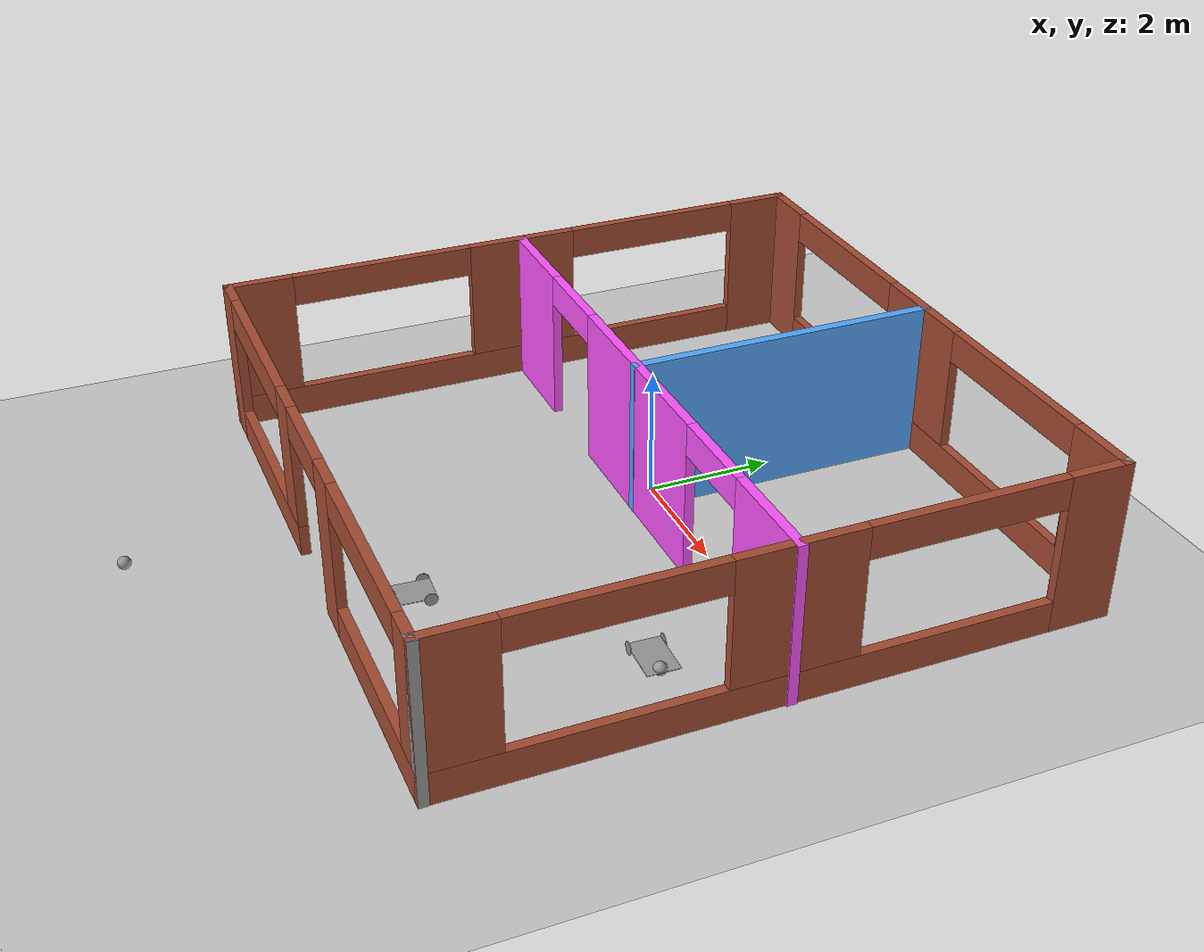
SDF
<sdf version="1.6">
 <world name="default">
  <plugin name="hello" filename="libhello.so"/>
  <light name="sun" type="directional">
   <pose>0 0 10 0 -0 0</pose>
   <diffuse>0.8 0.8 0.8 1</diffuse>
   <specular>0.2 0.2 0.2 1</specular>
   <attenuation>
    <range>1000</range>
    <constant>0.9</constant>
    <linear>0.01</linear>
    <quadratic>0.001</quadratic>
   </attenuation>
   <direction>-0.5 0.1 -0.9</direction>
  </light>
  <model name="ground_plane">
   <static>1</static>
   <link name="link">
    <collision name="collision">
     <geometry><plane><normal>0 0 1</normal><size>100 100</size></plane></geometry>
     <surface><friction><ode><mu>100</mu><mu2>50</mu2></ode></friction></surface>
    </collision>
    <visual name="visual">
     <cast_shadows>0</cast_shadows>
     <geometry><plane><normal>0 0 1</normal><size>100 100</size></plane></geometry>
     <material>
      <script><uri>file://media/materials/scripts/gazebo.material</uri><name>Gazebo/Grey</name></script>
     </material>
    </visual>
   </link>
  </model>
  <gravity>0 0 -9.8</gravity>
  <magnetic_field>6e-06 2.3e-05 -4.2e-05</magnetic_field>
  <atmosphere type="adiabatic"/>
  <physics name="default_physics" default="0" type="ode">
   <max_step_size>0.001</max_step_size>
   <real_time_factor>1</real_time_factor>
   <real_time_update_rate>1000</real_time_update_rate>
  </physics>
  <scene><ambient>0.4 0.4 0.4 1</ambient><background>0.7 0.7 0.7 1</background><shadows>1</shadows></scene>
  <spherical_coordinates>
   <surface_model>EARTH_WGS84</surface_model>
   <latitude_deg>0</latitude_deg>
   <longitude_deg>0</longitude_deg>
   <elevation>0</elevation>
   <heading_deg>0</heading_deg>
  </spherical_coordinates>
  <model name="office">
   <pose>0.46857 -0.482604 0 0 -0 0</pose>
   <link name="Wall_0">
    <pose>-4.938 0 0 0 0 -1.5708</pose>
    <visual name="Wall_0_Visual_0">
     <pose>-4.4756 0 1.25 0 -0 0</pose>
     <geometry><box><size>1.04879 0.15 2.5</size></box></geometry>
     <material>
      <script><uri>file://media/materials/scripts/gazebo.material</uri><name>Gazebo/Bricks</name></script>
      <ambient>1 1 1 1</ambient>
     </material>
     <meta><layer>0</layer></meta>
    </visual>
    <collision name="Wall_0_Collision_0">
     <geometry><box><size>1.04879 0.15 2.5</size></box></geometry>
     <pose>-4.4756 0 1.25 0 -0 0</pose>
    </collision>
    <visual name="Wall_0_Visual_1">
     <pose>0.524397 0 0.25 0 -0 0</pose>
     <geometry><box><size>8.95121 0.15 0.5</size></box></geometry>
     <material>
      <script><uri>file://media/materials/scripts/gazebo.material</uri><name>Gazebo/Bricks</name></script>
      <ambient>1 1 1 1</ambient>
     </material>
     <meta><layer>0</layer></meta>
    </visual>
    <collision name="Wall_0_Collision_1">
     <geometry><box><size>8.95121 0.15 0.5</size></box></geometry>
     <pose>0.524397 0 0.25 0 -0 0</pose>
    </collision>
    <visual name="Wall_0_Visual_2">
     <pose>-0.029291 0 1.5 0 -0 0</pose>
     <geometry><box><size>1.84383 0.15 2</size></box></geometry>
     <material>
      <script><uri>file://media/materials/scripts/gazebo.material</uri><name>Gazebo/Bricks</name></script>
      <ambient>1 1 1 1</ambient>
     </material>
     <meta><layer>0</layer></meta>
    </visual>
    <collision name="Wall_0_Collision_2">
     <geometry><box><size>1.84383 0.15 2</size></box></geometry>
     <pose>-0.029291 0 1.5 0 -0 0</pose>
    </collision>
    <visual name="Wall_0_Visual_3">
     <pose>4.44631 0 1.5 0 -0 0</pose>
     <geometry><box><size>1.10737 0.15 2</size></box></geometry>
     <material>
      <script><uri>file://media/materials/scripts/gazebo.material</uri><name>Gazebo/Bricks</name></script>
      <ambient>1 1 1 1</ambient>
     </material>
     <meta><layer>0</layer></meta>
    </visual>
    <collision name="Wall_0_Collision_3">
     <geometry><box><size>1.10737 0.15 2</size></box></geometry>
     <pose>4.44631 0 1.5 0 -0 0</pose>
    </collision>
    <visual name="Wall_0_Visual_4">
     <pose>-2.45121 0 2.25 0 -0 0</pose>
     <geometry><box><size>3 0.15 0.5</size></box></geometry>
     <material>
      <script><uri>file://media/materials/scripts/gazebo.material</uri><name>Gazebo/Bricks</name></script>
      <ambient>1 1 1 1</ambient>
     </material>
     <meta><layer>0</layer></meta>
    </visual>
    <collision name="Wall_0_Collision_4">
     <geometry><box><size>3 0.15 0.5</size></box></geometry>
     <pose>-2.45121 0 2.25 0 -0 0</pose>
    </collision>
    <visual name="Wall_0_Visual_5">
     <pose>2.39262 0 2.25 0 -0 0</pose>
     <geometry><box><size>3 0.15 0.5</size></box></geometry>
     <material>
      <script><uri>file://media/materials/scripts/gazebo.material</uri><name>Gazebo/Bricks</name></script>
      <ambient>1 1 1 1</ambient>
     </material>
     <meta><layer>0</layer></meta>
    </visual>
    <collision name="Wall_0_Collision_5">
     <geometry><box><size>3 0.15 0.5</size></box></geometry>
     <pose>2.39262 0 2.25 0 -0 0</pose>
    </collision>
   </link>
   <link name="Wall_1">
    <pose>-0.013 -4.925 0 0 -0 0</pose>
    <visual name="Wall_1_Visual_0">
     <pose>-4.69268 0 1.25 0 -0 0</pose>
     <geometry><box><size>0.614643 0.15 2.5</size></box></geometry>
     <material>
      <script><uri>file://media/materials/scripts/gazebo.material</uri><name>Gazebo/Bricks</name></script>
      <ambient>1 1 1 1</ambient>
     </material>
     <meta><layer>0</layer></meta>
    </visual>
    <collision name="Wall_1_Collision_0">
     <geometry><box><size>0.614643 0.15 2.5</size></box></geometry>
     <pose>-4.69268 0 1.25 0 -0 0</pose>
    </collision>
    <visual name="Wall_1_Visual_1">
     <pose>1.08612 0 1.25 0 -0 0</pose>
     <geometry><box><size>0.654955 0.15 2.5</size></box></geometry>
     <material>
      <script><uri>file://media/materials/scripts/gazebo.material</uri><name>Gazebo/Bricks</name></script>
      <ambient>1 1 1 1</ambient>
     </material>
     <meta><layer>0</layer></meta>
    </visual>
    <collision name="Wall_1_Collision_1">
     <geometry><box><size>0.654955 0.15 2.5</size></box></geometry>
     <pose>1.08612 0 1.25 0 -0 0</pose>
    </collision>
    <visual name="Wall_1_Visual_2">
     <pose>-2.56336 0 0.25 0 -0 0</pose>
     <geometry><box><size>3.644 0.15 0.5</size></box></geometry>
     <material>
      <script><uri>file://media/materials/scripts/gazebo.material</uri><name>Gazebo/Bricks</name></script>
      <ambient>1 1 1 1</ambient>
     </material>
     <meta><layer>0</layer></meta>
    </visual>
    <collision name="Wall_1_Collision_2">
     <geometry><box><size>3.644 0.15 0.5</size></box></geometry>
     <pose>-2.56336 0 0.25 0 -0 0</pose>
    </collision>
    <visual name="Wall_1_Visual_3">
     <pose>3.2068 0 0.25 0 -0 0</pose>
     <geometry><box><size>3.5864 0.15 0.5</size></box></geometry>
     <material>
      <script><uri>file://media/materials/scripts/gazebo.material</uri><name>Gazebo/Bricks</name></script>
      <ambient>1 1 1 1</ambient>
     </material>
     <meta><layer>0</layer></meta>
    </visual>
    <collision name="Wall_1_Collision_3">
     <geometry><box><size>3.5864 0.15 0.5</size></box></geometry>
     <pose>3.2068 0 0.25 0 -0 0</pose>
    </collision>
    <visual name="Wall_1_Visual_4">
     <pose>-1.06336 0 1.5 0 -0 0</pose>
     <geometry><box><size>0.643998 0.15 2</size></box></geometry>
     <material>
      <script><uri>file://media/materials/scripts/gazebo.material</uri><name>Gazebo/Bricks</name></script>
      <ambient>1 1 1 1</ambient>
     </material>
     <meta><layer>0</layer></meta>
    </visual>
    <collision name="Wall_1_Collision_4">
     <geometry><box><size>0.643998 0.15 2</size></box></geometry>
     <pose>-1.06336 0 1.5 0 -0 0</pose>
    </collision>
    <visual name="Wall_1_Visual_5">
     <pose>-1.06336 0 1.5 0 -0 0</pose>
     <geometry><box><size>0.643998 0.15 2</size></box></geometry>
     <material>
      <script><uri>file://media/materials/scripts/gazebo.material</uri><name>Gazebo/Bricks</name></script>
      <ambient>1 1 1 1</ambient>
     </material>
     <meta><layer>0</layer></meta>
    </visual>
    <collision name="Wall_1_Collision_5">
     <geometry><box><size>0.643998 0.15 2</size></box></geometry>
     <pose>-1.06336 0 1.5 0 -0 0</pose>
    </collision>
    <visual name="Wall_1_Visual_6">
     <pose>4.7068 0 1.5 0 -0 0</pose>
     <geometry><box><size>0.586404 0.15 2</size></box></geometry>
     <material>
      <script><uri>file://media/materials/scripts/gazebo.material</uri><name>Gazebo/Bricks</name></script>
      <ambient>1 1 1 1</ambient>
     </material>
     <meta><layer>0</layer></meta>
    </visual>
    <collision name="Wall_1_Collision_6">
     <geometry><box><size>0.586404 0.15 2</size></box></geometry>
     <pose>4.7068 0 1.5 0 -0 0</pose>
    </collision>
    <visual name="Wall_1_Visual_7">
     <pose>-2.88536 0 2.25 0 -0 0</pose>
     <geometry><box><size>3 0.15 0.5</size></box></geometry>
     <material>
      <script><uri>file://media/materials/scripts/gazebo.material</uri><name>Gazebo/Bricks</name></script>
      <ambient>1 1 1 1</ambient>
     </material>
     <meta><layer>0</layer></meta>
    </visual>
    <collision name="Wall_1_Collision_7">
     <geometry><box><size>3 0.15 0.5</size></box></geometry>
     <pose>-2.88536 0 2.25 0 -0 0</pose>
    </collision>
    <visual name="Wall_1_Visual_8">
     <pose>2.9136 0 2.25 0 -0 0</pose>
     <geometry><box><size>3 0.15 0.5</size></box></geometry>
     <material>
      <script><uri>file://media/materials/scripts/gazebo.material</uri><name>Gazebo/Bricks</name></script>
      <ambient>1 1 1 1</ambient>
     </material>
     <meta><layer>0</layer></meta>
    </visual>
    <collision name="Wall_1_Collision_8">
     <geometry><box><size>3 0.15 0.5</size></box></geometry>
     <pose>2.9136 0 2.25 0 -0 0</pose>
    </collision>
    <visual name="Wall_1_Visual_9">
     <pose>0.008641 0 2.25 0 -0 0</pose>
     <geometry><box><size>1.5 0.15 0.5</size></box></geometry>
     <material>
      <script><uri>file://media/materials/scripts/gazebo.material</uri><name>Gazebo/Bricks</name></script>
      <ambient>1 1 1 1</ambient>
     </material>
     <meta><layer>0</layer></meta>
    </visual>
    <collision name="Wall_1_Collision_9">
     <geometry><box><size>1.5 0.15 0.5</size></box></geometry>
     <pose>0.008641 0 2.25 0 -0 0</pose>
    </collision>
    <visual name="Wall_1_Visual_10">
     <pose>0.008641 0 2.25 0 -0 0</pose>
     <geometry><box><size>1.5 0.15 0.5</size></box></geometry>
     <material>
      <script><uri>file://media/materials/scripts/gazebo.material</uri><name>Gazebo/Bricks</name></script>
      <ambient>1 1 1 1</ambient>
     </material>
     <meta><layer>0</layer></meta>
    </visual>
    <collision name="Wall_1_Collision_10">
     <geometry><box><size>1.5 0.15 0.5</size></box></geometry>
     <pose>0.008641 0 2.25 0 -0 0</pose>
    </collision>
   </link>
   <link name="Wall_14">
    <pose>0.013 0.038 0 0 -0 0</pose>
    <visual name="Wall_14_Visual_0">
     <pose>-4.14875 0 1.25 0 -0 0</pose>
     <geometry><box><size>1.7025 0.15 2.5</size></box></geometry>
     <material>
      <script><uri>file://media/materials/scripts/gazebo.material</uri><name>Gazebo/Grey</name></script>
      <ambient>1 0.333333 1 1</ambient>
     </material>
     <meta><layer>0</layer></meta>
    </visual>
    <collision name="Wall_14_Collision_0">
     <geometry><box><size>1.7025 0.15 2.5</size></box></geometry>
     <pose>-4.14875 0 1.25 0 -0 0</pose>
    </collision>
    <visual name="Wall_14_Visual_1">
     <pose>-0.00051 0 1.25 0 -0 0</pose>
     <geometry><box><size>3.59398 0.15 2.5</size></box></geometry>
     <material>
      <script><uri>file://media/materials/scripts/gazebo.material</uri><name>Gazebo/Grey</name></script>
      <ambient>1 0.333333 1 1</ambient>
     </material>
     <meta><layer>0</layer></meta>
    </visual>
    <collision name="Wall_14_Collision_1">
     <geometry><box><size>3.59398 0.15 2.5</size></box></geometry>
     <pose>-0.00051 0 1.25 0 -0 0</pose>
    </collision>
    <visual name="Wall_14_Visual_2">
     <pose>4.14824 0 1.25 0 -0 0</pose>
     <geometry><box><size>1.70352 0.15 2.5</size></box></geometry>
     <material>
      <script><uri>file://media/materials/scripts/gazebo.material</uri><name>Gazebo/Grey</name></script>
      <ambient>1 0.333333 1 1</ambient>
     </material>
     <meta><layer>0</layer></meta>
    </visual>
    <collision name="Wall_14_Collision_2">
     <geometry><box><size>1.70352 0.15 2.5</size></box></geometry>
     <pose>4.14824 0 1.25 0 -0 0</pose>
    </collision>
    <visual name="Wall_14_Visual_3">
     <pose>-2.5475 0 2.25 0 -0 0</pose>
     <geometry><box><size>1.5 0.15 0.5</size></box></geometry>
     <material>
      <script><uri>file://media/materials/scripts/gazebo.material</uri><name>Gazebo/Grey</name></script>
      <ambient>1 0.333333 1 1</ambient>
     </material>
     <meta><layer>0</layer></meta>
    </visual>
    <collision name="Wall_14_Collision_3">
     <geometry><box><size>1.5 0.15 0.5</size></box></geometry>
     <pose>-2.5475 0 2.25 0 -0 0</pose>
    </collision>
    <visual name="Wall_14_Visual_4">
     <pose>2.54648 0 2.25 0 -0 0</pose>
     <geometry><box><size>1.5 0.15 0.5</size></box></geometry>
     <material>
      <script><uri>file://media/materials/scripts/gazebo.material</uri><name>Gazebo/Grey</name></script>
      <ambient>1 0.333333 1 1</ambient>
     </material>
     <meta><layer>0</layer></meta>
    </visual>
    <collision name="Wall_14_Collision_4">
     <geometry><box><size>1.5 0.15 0.5</size></box></geometry>
     <pose>2.54648 0 2.25 0 -0 0</pose>
    </collision>
   </link>
   <link name="Wall_18">
    <collision name="Wall_18_Collision">
     <geometry><box><size>5 0.15 2.5</size></box></geometry>
     <pose>0 0 1.25 0 -0 0</pose>
    </collision>
    <visual name="Wall_18_Visual">
     <pose>0 0 1.25 0 -0 0</pose>
     <geometry><box><size>5 0.15 2.5</size></box></geometry>
     <material>
      <script><uri>file://media/materials/scripts/gazebo.material</uri><name>Gazebo/Grey</name></script>
      <ambient>0.333333 0.666667 1 1</ambient>
     </material>
     <meta><layer>0</layer></meta>
    </visual>
    <pose>-0.045871 2.45735 0 0 0 -1.5708</pose>
   </link>
   <link name="Wall_2">
    <collision name="Wall_2_Collision">
     <geometry><box><size>0.15 0.15 2.5</size></box></geometry>
     <pose>0 0 1.25 0 -0 0</pose>
    </collision>
    <visual name="Wall_2_Visual">
     <pose>0 0 1.25 0 -0 0</pose>
     <geometry><box><size>0.15 0.15 2.5</size></box></geometry>
     <material>
      <script><uri>file://media/materials/scripts/gazebo.material</uri><name>Gazebo/Grey</name></script>
      <ambient>1 1 1 1</ambient>
     </material>
     <meta><layer>0</layer></meta>
    </visual>
    <pose>4.912 -4.925 0 0 -0 0</pose>
   </link>
   <link name="Wall_4">
    <pose>-0.013 4.925 0 0 -0 0</pose>
    <visual name="Wall_4_Visual_0">
     <pose>-4.48801 0 1.25 0 -0 0</pose>
     <geometry><box><size>1.02398 0.15 2.5</size></box></geometry>
     <material>
      <script><uri>file://media/materials/scripts/gazebo.material</uri><name>Gazebo/Bricks</name></script>
      <ambient>1 1 1 1</ambient>
     </material>
     <meta><layer>0</layer></meta>
    </visual>
    <collision name="Wall_4_Collision_0">
     <geometry><box><size>1.02398 0.15 2.5</size></box></geometry>
     <pose>-4.48801 0 1.25 0 -0 0</pose>
    </collision>
    <visual name="Wall_4_Visual_1">
     <pose>0.511991 0 0.25 0 -0 0</pose>
     <geometry><box><size>8.97602 0.15 0.5</size></box></geometry>
     <material>
      <script><uri>file://media/materials/scripts/gazebo.material</uri><name>Gazebo/Bricks</name></script>
      <ambient>1 1 1 1</ambient>
     </material>
     <meta><layer>0</layer></meta>
    </visual>
    <collision name="Wall_4_Collision_1">
     <geometry><box><size>8.97602 0.15 0.5</size></box></geometry>
     <pose>0.511991 0 0.25 0 -0 0</pose>
    </collision>
    <visual name="Wall_4_Visual_2">
     <pose>-0.054103 0 1.5 0 -0 0</pose>
     <geometry><box><size>1.84383 0.15 2</size></box></geometry>
     <material>
      <script><uri>file://media/materials/scripts/gazebo.material</uri><name>Gazebo/Bricks</name></script>
      <ambient>1 1 1 1</ambient>
     </material>
     <meta><layer>0</layer></meta>
    </visual>
    <collision name="Wall_4_Collision_2">
     <geometry><box><size>1.84383 0.15 2</size></box></geometry>
     <pose>-0.054103 0 1.5 0 -0 0</pose>
    </collision>
    <visual name="Wall_4_Visual_3">
     <pose>4.43391 0 1.5 0 -0 0</pose>
     <geometry><box><size>1.13219 0.15 2</size></box></geometry>
     <material>
      <script><uri>file://media/materials/scripts/gazebo.material</uri><name>Gazebo/Bricks</name></script>
      <ambient>1 1 1 1</ambient>
     </material>
     <meta><layer>0</layer></meta>
    </visual>
    <collision name="Wall_4_Collision_3">
     <geometry><box><size>1.13219 0.15 2</size></box></geometry>
     <pose>4.43391 0 1.5 0 -0 0</pose>
    </collision>
    <visual name="Wall_4_Visual_4">
     <pose>-2.47602 0 2.25 0 -0 0</pose>
     <geometry><box><size>3 0.15 0.5</size></box></geometry>
     <material>
      <script><uri>file://media/materials/scripts/gazebo.material</uri><name>Gazebo/Bricks</name></script>
      <ambient>1 1 1 1</ambient>
     </material>
     <meta><layer>0</layer></meta>
    </visual>
    <collision name="Wall_4_Collision_4">
     <geometry><box><size>3 0.15 0.5</size></box></geometry>
     <pose>-2.47602 0 2.25 0 -0 0</pose>
    </collision>
    <visual name="Wall_4_Visual_5">
     <pose>2.36781 0 2.25 0 -0 0</pose>
     <geometry><box><size>3 0.15 0.5</size></box></geometry>
     <material>
      <script><uri>file://media/materials/scripts/gazebo.material</uri><name>Gazebo/Bricks</name></script>
      <ambient>1 1 1 1</ambient>
     </material>
     <meta><layer>0</layer></meta>
    </visual>
    <collision name="Wall_4_Collision_5">
     <geometry><box><size>3 0.15 0.5</size></box></geometry>
     <pose>2.36781 0 2.25 0 -0 0</pose>
    </collision>
   </link>
   <link name="Wall_5">
    <collision name="Wall_5_Collision">
     <geometry><box><size>0.15 0.15 2.5</size></box></geometry>
     <pose>0 0 1.25 0 -0 0</pose>
    </collision>
    <visual name="Wall_5_Visual">
     <pose>0 0 1.25 0 -0 0</pose>
     <geometry><box><size>0.15 0.15 2.5</size></box></geometry>
     <material>
      <script><uri>file://media/materials/scripts/gazebo.material</uri><name>Gazebo/Grey</name></script>
      <ambient>1 1 1 1</ambient>
     </material>
     <meta><layer>0</layer></meta>
    </visual>
    <pose>4.912 4.925 0 0 -0 0</pose>
   </link>
   <link name="Wall_6">
    <pose>4.912 0 0 0 0 -1.5708</pose>
    <visual name="Wall_6_Visual_0">
     <pose>-4.50971 0 1.25 0 -0 0</pose>
     <geometry><box><size>0.980571 0.15 2.5</size></box></geometry>
     <material>
      <script><uri>file://media/materials/scripts/gazebo.material</uri><name>Gazebo/Bricks</name></script>
      <ambient>1 1 1 1</ambient>
     </material>
     <meta><layer>0</layer></meta>
    </visual>
    <collision name="Wall_6_Collision_0">
     <geometry><box><size>0.980571 0.15 2.5</size></box></geometry>
     <pose>-4.50971 0 1.25 0 -0 0</pose>
    </collision>
    <visual name="Wall_6_Visual_1">
     <pose>0.490285 0 0.25 0 -0 0</pose>
     <geometry><box><size>9.01943 0.15 0.5</size></box></geometry>
     <material>
      <script><uri>file://media/materials/scripts/gazebo.material</uri><name>Gazebo/Bricks</name></script>
      <ambient>1 1 1 1</ambient>
     </material>
     <meta><layer>0</layer></meta>
    </visual>
    <collision name="Wall_6_Collision_1">
     <geometry><box><size>9.01943 0.15 0.5</size></box></geometry>
     <pose>0.490285 0 0.25 0 -0 0</pose>
    </collision>
    <visual name="Wall_6_Visual_2">
     <pose>-0.074773 0 1.5 0 -0 0</pose>
     <geometry><box><size>1.88931 0.15 2</size></box></geometry>
     <material>
      <script><uri>file://media/materials/scripts/gazebo.material</uri><name>Gazebo/Bricks</name></script>
      <ambient>1 1 1 1</ambient>
     </material>
     <meta><layer>0</layer></meta>
    </visual>
    <collision name="Wall_6_Collision_2">
     <geometry><box><size>1.88931 0.15 2</size></box></geometry>
     <pose>-0.074773 0 1.5 0 -0 0</pose>
    </collision>
    <visual name="Wall_6_Visual_3">
     <pose>4.43494 0 1.5 0 -0 0</pose>
     <geometry><box><size>1.13012 0.15 2</size></box></geometry>
     <material>
      <script><uri>file://media/materials/scripts/gazebo.material</uri><name>Gazebo/Bricks</name></script>
      <ambient>1 1 1 1</ambient>
     </material>
     <meta><layer>0</layer></meta>
    </visual>
    <collision name="Wall_6_Collision_3">
     <geometry><box><size>1.13012 0.15 2</size></box></geometry>
     <pose>4.43494 0 1.5 0 -0 0</pose>
    </collision>
    <visual name="Wall_6_Visual_4">
     <pose>-2.51943 0 2.25 0 -0 0</pose>
     <geometry><box><size>3 0.15 0.5</size></box></geometry>
     <material>
      <script><uri>file://media/materials/scripts/gazebo.material</uri><name>Gazebo/Bricks</name></script>
      <ambient>1 1 1 1</ambient>
     </material>
     <meta><layer>0</layer></meta>
    </visual>
    <collision name="Wall_6_Collision_4">
     <geometry><box><size>3 0.15 0.5</size></box></geometry>
     <pose>-2.51943 0 2.25 0 -0 0</pose>
    </collision>
    <visual name="Wall_6_Visual_5">
     <pose>2.36988 0 2.25 0 -0 0</pose>
     <geometry><box><size>3 0.15 0.5</size></box></geometry>
     <material>
      <script><uri>file://media/materials/scripts/gazebo.material</uri><name>Gazebo/Bricks</name></script>
      <ambient>1 1 1 1</ambient>
     </material>
     <meta><layer>0</layer></meta>
    </visual>
    <collision name="Wall_6_Collision_5">
     <geometry><box><size>3 0.15 0.5</size></box></geometry>
     <pose>2.36988 0 2.25 0 -0 0</pose>
    </collision>
   </link>
   <link name="Wall_7">
    <collision name="Wall_7_Collision">
     <geometry><box><size>0.16 0.15 2.5</size></box></geometry>
     <pose>0 0 1.25 0 -0 0</pose>
    </collision>
    <visual name="Wall_7_Visual">
     <pose>0 0 1.25 0 -0 0</pose>
     <geometry><box><size>0.16 0.15 2.5</size></box></geometry>
     <material>
      <script><uri>file://media/materials/scripts/gazebo.material</uri><name>Gazebo/Grey</name></script>
      <ambient>1 1 1 1</ambient>
     </material>
     <meta><layer>0</layer></meta>
    </visual>
    <pose>4.917 -4.925 0 0 -0 0</pose>
   </link>
   <static>1</static>
  </model>
  <model name="robot">
   <link name="link_0">
    <pose>0.410972 -0.474263 0.5 0 -0 0</pose>
    <inertial>
     <mass>1</mass>
     <inertia>
      <ixx>0.166667</ixx>
      <ixy>0</ixy>
      <ixz>0</ixz>
      <iyy>0.166667</iyy>
      <iyz>0</iyz>
      <izz>0.166667</izz>
     </inertia>
    </inertial>
    <visual name="visual">
     <geometry><box><size>0.5 0.75 0.01</size></box></geometry>
     <material>
      <lighting>1</lighting>
      <script><uri>file://media/materials/scripts/gazebo.material</uri><name>Gazebo/Grey</name></script>
      <ambient>0.3 0.3 0.3 1</ambient>
      <diffuse>0.7 0.7 0.7 1</diffuse>
      <specular>0.01 0.01 0.01 1</specular>
      <emissive>0 0 0 1</emissive>
      <shader type="vertex"><normal_map>__default__</normal_map></shader>
     </material>
    </visual>
    <collision name="collision">
     <geometry><box><size>0.5 0.75 0.01</size></box></geometry>
     <surface>
      <friction>
       <ode><mu>1</mu><mu2>1</mu2><fdir1>0 0 0</fdir1><slip1>0</slip1><slip2>0</slip2></ode>
       <torsional>
        <coefficient>1</coefficient>
        <patch_radius>0</patch_radius>
        <surface_radius>0</surface_radius>
        <use_patch_radius>1</use_patch_radius>
        <ode><slip>0</slip></ode>
       </torsional>
      </friction>
      <bounce><restitution_coefficient>0</restitution_coefficient><threshold>1e+06</threshold></bounce>
      <contact>
       <collide_without_contact>0</collide_without_contact>
       <collide_without_contact_bitmask>1</collide_without_contact_bitmask>
       <collide_bitmask>1</collide_bitmask>
       <ode>
        <soft_cfm>0</soft_cfm>
        <soft_erp>0.2</soft_erp>
        <kp>1e+13</kp>
        <kd>1</kd>
        <max_vel>0.01</max_vel>
        <min_depth>0</min_depth>
       </ode>
       <bullet>
        <split_impulse>1</split_impulse>
        <split_impulse_penetration_threshold>-0.01</split_impulse_penetration_threshold>
        <soft_cfm>0</soft_cfm>
        <soft_erp>0.2</soft_erp>
        <kp>1e+13</kp>
        <kd>1</kd>
       </bullet>
      </contact>
     </surface>
    </collision>
   </link>
   <link name="link_1">
    <pose>0.668051 -0.198964 0.5 0 1.57 0</pose>
    <inertial>
     <mass>1</mass>
     <inertia><ixx>0.145833</ixx><ixy>0</ixy><ixz>0</ixz><iyy>0.145833</iyy><iyz>0</iyz><izz>0.125</izz></inertia>
    </inertial>
    <visual name="visual">
     <geometry><cylinder><radius>0.1</radius><length>0.01</length></cylinder></geometry>
     <material>
      <lighting>1</lighting>
      <script><uri>file://media/materials/scripts/gazebo.material</uri><name>Gazebo/Grey</name></script>
      <ambient>0.3 0.3 0.3 1</ambient>
      <diffuse>0.7 0.7 0.7 1</diffuse>
      <specular>0.01 0.01 0.01 1</specular>
      <emissive>0 0 0 1</emissive>
      <shader type="vertex"><normal_map>__default__</normal_map></shader>
     </material>
    </visual>
    <collision name="collision">
     <geometry><cylinder><radius>0.1</radius><length>0.01</length></cylinder></geometry>
     <surface>
      <friction>
       <ode><mu>1</mu><mu2>1</mu2><fdir1>0 0 0</fdir1><slip1>0</slip1><slip2>0</slip2></ode>
       <torsional>
        <coefficient>1</coefficient>
        <patch_radius>0</patch_radius>
        <surface_radius>0</surface_radius>
        <use_patch_radius>1</use_patch_radius>
        <ode><slip>0</slip></ode>
       </torsional>
      </friction>
      <bounce><restitution_coefficient>0</restitution_coefficient><threshold>1e+06</threshold></bounce>
      <contact>
       <collide_without_contact>0</collide_without_contact>
       <collide_without_contact_bitmask>1</collide_without_contact_bitmask>
       <collide_bitmask>1</collide_bitmask>
       <ode>
        <soft_cfm>0</soft_cfm>
        <soft_erp>0.2</soft_erp>
        <kp>1e+13</kp>
        <kd>1</kd>
        <max_vel>0.01</max_vel>
        <min_depth>0</min_depth>
       </ode>
       <bullet>
        <split_impulse>1</split_impulse>
        <split_impulse_penetration_threshold>-0.01</split_impulse_penetration_threshold>
        <soft_cfm>0</soft_cfm>
        <soft_erp>0.2</soft_erp>
        <kp>1e+13</kp>
        <kd>1</kd>
       </bullet>
      </contact>
     </surface>
    </collision>
   </link>
   <link name="link_1_clone">
    <pose>0.155892 -0.199263 0.5 0 1.57 0</pose>
    <inertial>
     <mass>1</mass>
     <inertia><ixx>0.145833</ixx><ixy>0</ixy><ixz>0</ixz><iyy>0.145833</iyy><iyz>0</iyz><izz>0.125</izz></inertia>
    </inertial>
    <visual name="visual">
     <geometry><cylinder><radius>0.1</radius><length>0.01</length></cylinder></geometry>
     <material>
      <lighting>1</lighting>
      <script><uri>file://media/materials/scripts/gazebo.material</uri><name>Gazebo/Grey</name></script>
      <ambient>0.3 0.3 0.3 1</ambient>
      <diffuse>0.7 0.7 0.7 1</diffuse>
      <specular>0.01 0.01 0.01 1</specular>
      <emissive>0 0 0 1</emissive>
      <shader type="vertex"><normal_map>__default__</normal_map></shader>
     </material>
    </visual>
    <collision name="collision">
     <geometry><cylinder><radius>0.1</radius><length>0.01</length></cylinder></geometry>
     <surface>
      <friction>
       <ode><mu>1</mu><mu2>1</mu2><fdir1>0 0 0</fdir1><slip1>0</slip1><slip2>0</slip2></ode>
       <torsional>
        <coefficient>1</coefficient>
        <patch_radius>0</patch_radius>
        <surface_radius>0</surface_radius>
        <use_patch_radius>1</use_patch_radius>
        <ode><slip>0</slip></ode>
       </torsional>
      </friction>
      <bounce><restitution_coefficient>0</restitution_coefficient><threshold>1e+06</threshold></bounce>
      <contact>
       <collide_without_contact>0</collide_without_contact>
       <collide_without_contact_bitmask>1</collide_without_contact_bitmask>
       <collide_bitmask>1</collide_bitmask>
       <ode>
        <soft_cfm>0</soft_cfm>
        <soft_erp>0.2</soft_erp>
        <kp>1e+13</kp>
        <kd>1</kd>
        <max_vel>0.01</max_vel>
        <min_depth>0</min_depth>
       </ode>
       <bullet>
        <split_impulse>1</split_impulse>
        <split_impulse_penetration_threshold>-0.01</split_impulse_penetration_threshold>
        <soft_cfm>0</soft_cfm>
        <soft_erp>0.2</soft_erp>
        <kp>1e+13</kp>
        <kd>1</kd>
       </bullet>
      </contact>
     </surface>
    </collision>
   </link>
   <link name="link_2">
    <pose>0.390972 -0.749263 0.5 0 -0 0</pose>
    <inertial>
     <mass>1</mass>
     <inertia><ixx>0.1</ixx><ixy>0</ixy><ixz>0</ixz><iyy>0.1</iyy><iyz>0</iyz><izz>0.1</izz></inertia>
    </inertial>
    <visual name="visual">
     <geometry><sphere><radius>0.1</radius></sphere></geometry>
     <material>
      <lighting>1</lighting>
      <script><uri>file://media/materials/scripts/gazebo.material</uri><name>Gazebo/Grey</name></script>
      <ambient>0.3 0.3 0.3 1</ambient>
      <diffuse>0.7 0.7 0.7 1</diffuse>
      <specular>0.01 0.01 0.01 1</specular>
      <emissive>0 0 0 1</emissive>
      <shader type="vertex"><normal_map>__default__</normal_map></shader>
     </material>
    </visual>
    <collision name="collision">
     <geometry><sphere><radius>0.1</radius></sphere></geometry>
     <surface>
      <friction>
       <ode><mu>1</mu><mu2>1</mu2><fdir1>0 0 0</fdir1><slip1>0</slip1><slip2>0</slip2></ode>
       <torsional>
        <coefficient>1</coefficient>
        <patch_radius>0</patch_radius>
        <surface_radius>0</surface_radius>
        <use_patch_radius>1</use_patch_radius>
        <ode><slip>0</slip></ode>
       </torsional>
      </friction>
      <bounce><restitution_coefficient>0</restitution_coefficient><threshold>1e+06</threshold></bounce>
      <contact>
       <collide_without_contact>0</collide_without_contact>
       <collide_without_contact_bitmask>1</collide_without_contact_bitmask>
       <collide_bitmask>1</collide_bitmask>
       <ode>
        <soft_cfm>0</soft_cfm>
        <soft_erp>0.2</soft_erp>
        <kp>1e+13</kp>
        <kd>1</kd>
        <max_vel>0.01</max_vel>
        <min_depth>0</min_depth>
       </ode>
       <bullet>
        <split_impulse>1</split_impulse>
        <split_impulse_penetration_threshold>-0.01</split_impulse_penetration_threshold>
        <soft_cfm>0</soft_cfm>
        <soft_erp>0.2</soft_erp>
        <kp>1e+13</kp>
        <kd>1</kd>
       </bullet>
      </contact>
     </surface>
    </collision>
   </link>
   <joint name="link_0_JOINT_1" type="revolute">
    <parent>link_0</parent>
    <child>link_1</child>
    <axis>
     <xyz>1 0 0</xyz>
     <use_parent_model_frame>0</use_parent_model_frame>
     <limit>
      <lower>-1.79769e+308</lower>
      <upper>1.79769e+308</upper>
      <effort>-1</effort>
      <velocity>-1</velocity>
     </limit>
     <dynamics>
      <spring_reference>0</spring_reference>
      <spring_stiffness>0</spring_stiffness>
      <damping>0</damping>
      <friction>0</friction>
     </dynamics>
    </axis>
    <physics>
     <ode><limit><cfm>0</cfm><erp>0.2</erp></limit><suspension><cfm>0</cfm><erp>0.2</erp></suspension></ode>
    </physics>
   </joint>
   <joint name="link_0_JOINT_2" type="revolute">
    <parent>link_0</parent>
    <child>link_1_clone</child>
    <axis>
     <xyz>1 0 0</xyz>
     <use_parent_model_frame>0</use_parent_model_frame>
     <limit>
      <lower>-1.79769e+308</lower>
      <upper>1.79769e+308</upper>
      <effort>-1</effort>
      <velocity>-1</velocity>
     </limit>
     <dynamics>
      <spring_reference>0</spring_reference>
      <spring_stiffness>0</spring_stiffness>
      <damping>0</damping>
     </dynamics>
    </axis>
    <physics>
     <ode><limit><cfm>0</cfm><erp>0.2</erp></limit><suspension><cfm>0</cfm><erp>0.2</erp></suspension></ode>
    </physics>
   </joint>
   <joint name="link_0_JOINT_3" type="ball">
    <parent>link_0</parent>
    <child>link_2</child>
    <physics>
     <ode><limit><cfm>0</cfm><erp>0.2</erp></limit><suspension><cfm>0</cfm><erp>0.2</erp></suspension></ode>
    </physics>
   </joint>
   <static>0</static>
   <pose>0.962408 -3.85067 -0.4 2e-06 -5e-06 -0.060077</pose>
  </model>
  <model name="robot_0">
   <link name="link_0">
    <pose>0.410972 -0.474263 0.5 0 -0 0</pose>
    <inertial>
     <mass>1</mass>
     <inertia>
      <ixx>0.166667</ixx>
      <ixy>0</ixy>
      <ixz>0</ixz>
      <iyy>0.166667</iyy>
      <iyz>0</iyz>
      <izz>0.166667</izz>
     </inertia>
    </inertial>
    <visual name="visual">
     <geometry><box><size>0.5 0.75 0.01</size></box></geometry>
     <material>
      <lighting>1</lighting>
      <script><uri>file://media/materials/scripts/gazebo.material</uri><name>Gazebo/Grey</name></script>
      <ambient>0.3 0.3 0.3 1</ambient>
      <diffuse>0.7 0.7 0.7 1</diffuse>
      <specular>0.01 0.01 0.01 1</specular>
      <emissive>0 0 0 1</emissive>
      <shader type="vertex"><normal_map>__default__</normal_map></shader>
     </material>
    </visual>
    <collision name="collision">
     <geometry><box><size>0.5 0.75 0.01</size></box></geometry>
     <surface>
      <friction>
       <ode><mu>1</mu><mu2>1</mu2><fdir1>0 0 0</fdir1><slip1>0</slip1><slip2>0</slip2></ode>
       <torsional>
        <coefficient>1</coefficient>
        <patch_radius>0</patch_radius>
        <surface_radius>0</surface_radius>
        <use_patch_radius>1</use_patch_radius>
        <ode><slip>0</slip></ode>
       </torsional>
      </friction>
      <bounce><restitution_coefficient>0</restitution_coefficient><threshold>1e+06</threshold></bounce>
      <contact>
       <collide_without_contact>0</collide_without_contact>
       <collide_without_contact_bitmask>1</collide_without_contact_bitmask>
       <collide_bitmask>1</collide_bitmask>
       <ode>
        <soft_cfm>0</soft_cfm>
        <soft_erp>0.2</soft_erp>
        <kp>1e+13</kp>
        <kd>1</kd>
        <max_vel>0.01</max_vel>
        <min_depth>0</min_depth>
       </ode>
       <bullet>
        <split_impulse>1</split_impulse>
        <split_impulse_penetration_threshold>-0.01</split_impulse_penetration_threshold>
        <soft_cfm>0</soft_cfm>
        <soft_erp>0.2</soft_erp>
        <kp>1e+13</kp>
        <kd>1</kd>
       </bullet>
      </contact>
     </surface>
    </collision>
   </link>
   <link name="link_1">
    <pose>0.668051 -0.198964 0.5 0 1.57 0</pose>
    <inertial>
     <mass>1</mass>
     <inertia><ixx>0.145833</ixx><ixy>0</ixy><ixz>0</ixz><iyy>0.145833</iyy><iyz>0</iyz><izz>0.125</izz></inertia>
    </inertial>
    <visual name="visual">
     <geometry><cylinder><radius>0.1</radius><length>0.01</length></cylinder></geometry>
     <material>
      <lighting>1</lighting>
      <script><uri>file://media/materials/scripts/gazebo.material</uri><name>Gazebo/Grey</name></script>
      <ambient>0.3 0.3 0.3 1</ambient>
      <diffuse>0.7 0.7 0.7 1</diffuse>
      <specular>0.01 0.01 0.01 1</specular>
      <emissive>0 0 0 1</emissive>
      <shader type="vertex"><normal_map>__default__</normal_map></shader>
     </material>
    </visual>
    <collision name="collision">
     <geometry><cylinder><radius>0.1</radius><length>0.01</length></cylinder></geometry>
     <surface>
      <friction>
       <ode><mu>1</mu><mu2>1</mu2><fdir1>0 0 0</fdir1><slip1>0</slip1><slip2>0</slip2></ode>
       <torsional>
        <coefficient>1</coefficient>
        <patch_radius>0</patch_radius>
        <surface_radius>0</surface_radius>
        <use_patch_radius>1</use_patch_radius>
        <ode><slip>0</slip></ode>
       </torsional>
      </friction>
      <bounce><restitution_coefficient>0</restitution_coefficient><threshold>1e+06</threshold></bounce>
      <contact>
       <collide_without_contact>0</collide_without_contact>
       <collide_without_contact_bitmask>1</collide_without_contact_bitmask>
       <collide_bitmask>1</collide_bitmask>
       <ode>
        <soft_cfm>0</soft_cfm>
        <soft_erp>0.2</soft_erp>
        <kp>1e+13</kp>
        <kd>1</kd>
        <max_vel>0.01</max_vel>
        <min_depth>0</min_depth>
       </ode>
       <bullet>
        <split_impulse>1</split_impulse>
        <split_impulse_penetration_threshold>-0.01</split_impulse_penetration_threshold>
        <soft_cfm>0</soft_cfm>
        <soft_erp>0.2</soft_erp>
        <kp>1e+13</kp>
        <kd>1</kd>
       </bullet>
      </contact>
     </surface>
    </collision>
   </link>
   <link name="link_1_clone">
    <pose>0.155892 -0.199263 0.5 0 1.57 0</pose>
    <inertial>
     <mass>1</mass>
     <inertia><ixx>0.145833</ixx><ixy>0</ixy><ixz>0</ixz><iyy>0.145833</iyy><iyz>0</iyz><izz>0.125</izz></inertia>
    </inertial>
    <visual name="visual">
     <geometry><cylinder><radius>0.1</radius><length>0.01</length></cylinder></geometry>
     <material>
      <lighting>1</lighting>
      <script><uri>file://media/materials/scripts/gazebo.material</uri><name>Gazebo/Grey</name></script>
      <ambient>0.3 0.3 0.3 1</ambient>
      <diffuse>0.7 0.7 0.7 1</diffuse>
      <specular>0.01 0.01 0.01 1</specular>
      <emissive>0 0 0 1</emissive>
      <shader type="vertex"><normal_map>__default__</normal_map></shader>
     </material>
    </visual>
    <collision name="collision">
     <geometry><cylinder><radius>0.1</radius><length>0.01</length></cylinder></geometry>
     <surface>
      <friction>
       <ode><mu>1</mu><mu2>1</mu2><fdir1>0 0 0</fdir1><slip1>0</slip1><slip2>0</slip2></ode>
       <torsional>
        <coefficient>1</coefficient>
        <patch_radius>0</patch_radius>
        <surface_radius>0</surface_radius>
        <use_patch_radius>1</use_patch_radius>
        <ode><slip>0</slip></ode>
       </torsional>
      </friction>
      <bounce><restitution_coefficient>0</restitution_coefficient><threshold>1e+06</threshold></bounce>
      <contact>
       <collide_without_contact>0</collide_without_contact>
       <collide_without_contact_bitmask>1</collide_without_contact_bitmask>
       <collide_bitmask>1</collide_bitmask>
       <ode>
        <soft_cfm>0</soft_cfm>
        <soft_erp>0.2</soft_erp>
        <kp>1e+13</kp>
        <kd>1</kd>
        <max_vel>0.01</max_vel>
        <min_depth>0</min_depth>
       </ode>
       <bullet>
        <split_impulse>1</split_impulse>
        <split_impulse_penetration_threshold>-0.01</split_impulse_penetration_threshold>
        <soft_cfm>0</soft_cfm>
        <soft_erp>0.2</soft_erp>
        <kp>1e+13</kp>
        <kd>1</kd>
       </bullet>
      </contact>
     </surface>
    </collision>
   </link>
   <link name="link_2">
    <pose>0.390972 -0.749263 0.5 0 -0 0</pose>
    <inertial>
     <mass>1</mass>
     <inertia><ixx>0.1</ixx><ixy>0</ixy><ixz>0</ixz><iyy>0.1</iyy><iyz>0</iyz><izz>0.1</izz></inertia>
    </inertial>
    <visual name="visual">
     <geometry><sphere><radius>0.1</radius></sphere></geometry>
     <material>
      <lighting>1</lighting>
      <script><uri>file://media/materials/scripts/gazebo.material</uri><name>Gazebo/Grey</name></script>
      <ambient>0.3 0.3 0.3 1</ambient>
      <diffuse>0.7 0.7 0.7 1</diffuse>
      <specular>0.01 0.01 0.01 1</specular>
      <emissive>0 0 0 1</emissive>
      <shader type="vertex"><normal_map>__default__</normal_map></shader>
     </material>
    </visual>
    <collision name="collision">
     <geometry><sphere><radius>0.1</radius></sphere></geometry>
     <surface>
      <friction>
       <ode><mu>1</mu><mu2>1</mu2><fdir1>0 0 0</fdir1><slip1>0</slip1><slip2>0</slip2></ode>
       <torsional>
        <coefficient>1</coefficient>
        <patch_radius>0</patch_radius>
        <surface_radius>0</surface_radius>
        <use_patch_radius>1</use_patch_radius>
        <ode><slip>0</slip></ode>
       </torsional>
      </friction>
      <bounce><restitution_coefficient>0</restitution_coefficient><threshold>1e+06</threshold></bounce>
      <contact>
       <collide_without_contact>0</collide_without_contact>
       <collide_without_contact_bitmask>1</collide_without_contact_bitmask>
       <collide_bitmask>1</collide_bitmask>
       <ode>
        <soft_cfm>0</soft_cfm>
        <soft_erp>0.2</soft_erp>
        <kp>1e+13</kp>
        <kd>1</kd>
        <max_vel>0.01</max_vel>
        <min_depth>0</min_depth>
       </ode>
       <bullet>
        <split_impulse>1</split_impulse>
        <split_impulse_penetration_threshold>-0.01</split_impulse_penetration_threshold>
        <soft_cfm>0</soft_cfm>
        <soft_erp>0.2</soft_erp>
        <kp>1e+13</kp>
        <kd>1</kd>
       </bullet>
      </contact>
     </surface>
    </collision>
   </link>
   <joint name="link_0_JOINT_1" type="revolute">
    <parent>link_0</parent>
    <child>link_1</child>
    <axis>
     <xyz>1 0 0</xyz>
     <use_parent_model_frame>0</use_parent_model_frame>
     <limit>
      <lower>-1.79769e+308</lower>
      <upper>1.79769e+308</upper>
      <effort>-1</effort>
      <velocity>-1</velocity>
     </limit>
     <dynamics>
      <spring_reference>0</spring_reference>
      <spring_stiffness>0</spring_stiffness>
      <damping>0</damping>
      <friction>0</friction>
     </dynamics>
    </axis>
    <physics>
     <ode><limit><cfm>0</cfm><erp>0.2</erp></limit><suspension><cfm>0</cfm><erp>0.2</erp></suspension></ode>
    </physics>
   </joint>
   <joint name="link_0_JOINT_2" type="revolute">
    <parent>link_0</parent>
    <child>link_1_clone</child>
    <axis>
     <xyz>1 0 0</xyz>
     <use_parent_model_frame>0</use_parent_model_frame>
     <limit>
      <lower>-1.79769e+308</lower>
      <upper>1.79769e+308</upper>
      <effort>-1</effort>
      <velocity>-1</velocity>
     </limit>
     <dynamics>
      <spring_reference>0</spring_reference>
      <spring_stiffness>0</spring_stiffness>
      <damping>0</damping>
     </dynamics>
    </axis>
    <physics>
     <ode><limit><cfm>0</cfm><erp>0.2</erp></limit><suspension><cfm>0</cfm><erp>0.2</erp></suspension></ode>
    </physics>
   </joint>
   <joint name="link_0_JOINT_3" type="ball">
    <parent>link_0</parent>
    <child>link_2</child>
    <physics>
     <ode><limit><cfm>0</cfm><erp>0.2</erp></limit><suspension><cfm>0</cfm><erp>0.2</erp></suspension></ode>
    </physics>
   </joint>
   <static>0</static>
   <pose>3.48751 -2.12924 -0.4 2e-06 -4e-06 1.54095</pose>
  </model>
  <model name="my_ball">
   <link name="link_0">
    <pose>0.04186 -0.131522 0 0 -0 0</pose>
    <inertial>
     <mass>1</mass>
     <inertia><ixx>0.1</ixx><ixy>0</ixy><ixz>0</ixz><iyy>0.1</iyy><iyz>0</iyz><izz>0.1</izz></inertia>
    </inertial>
    <visual name="visual">
     <geometry><sphere><radius>0.1</radius></sphere></geometry>
     <material>
      <lighting>1</lighting>
      <script><uri>file://media/materials/scripts/gazebo.material</uri><name>Gazebo/Grey</name></script>
      <shader type="pixel"><normal_map>__default__</normal_map></shader>
      <ambient>1 1 1 1</ambient>
      <diffuse>1 1 1 1</diffuse>
      <specular>1 1 1 1</specular>
      <emissive>1 1 1 1</emissive>
     </material>
    </visual>
    <collision name="collision">
     <geometry><sphere><radius>0.1</radius></sphere></geometry>
     <surface>
      <friction>
       <ode><mu>1</mu><mu2>1</mu2><fdir1>0 0 0</fdir1><slip1>0</slip1><slip2>0</slip2></ode>
       <torsional>
        <coefficient>1</coefficient>
        <patch_radius>0</patch_radius>
        <surface_radius>0</surface_radius>
        <use_patch_radius>1</use_patch_radius>
        <ode><slip>0</slip></ode>
       </torsional>
      </friction>
      <bounce><restitution_coefficient>0</restitution_coefficient><threshold>1e+06</threshold></bounce>
      <contact>
       <collide_without_contact>0</collide_without_contact>
       <collide_without_contact_bitmask>1</collide_without_contact_bitmask>
       <collide_bitmask>1</collide_bitmask>
       <ode>
        <soft_cfm>0</soft_cfm>
        <soft_erp>0.2</soft_erp>
        <kp>1e+13</kp>
        <kd>1</kd>
        <max_vel>0.01</max_vel>
        <min_depth>0</min_depth>
       </ode>
       <bullet>
        <split_impulse>1</split_impulse>
        <split_impulse_penetration_threshold>-0.01</split_impulse_penetration_threshold>
        <soft_cfm>0</soft_cfm>
        <soft_erp>0.2</soft_erp>
        <kp>1e+13</kp>
        <kd>1</kd>
       </bullet>
      </contact>
     </surface>
    </collision>
   </link>
   <static>0</static>
   <pose>-0.991915 -7.7881 0.1 0 -0 0</pose>
  </model>
 </world>
</sdf>
